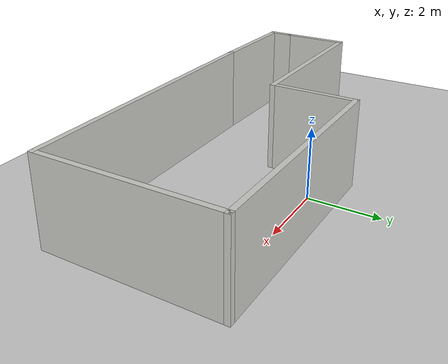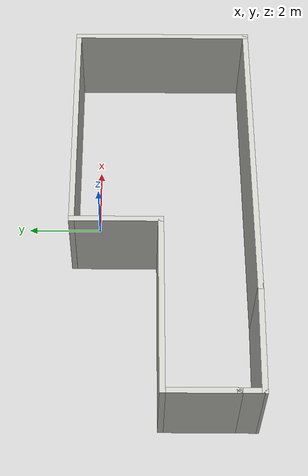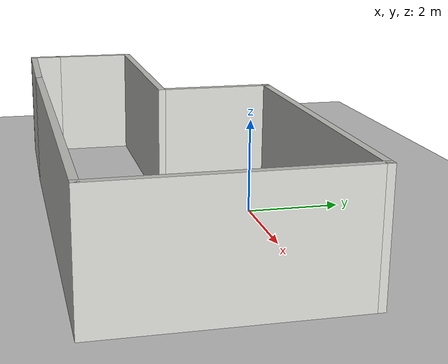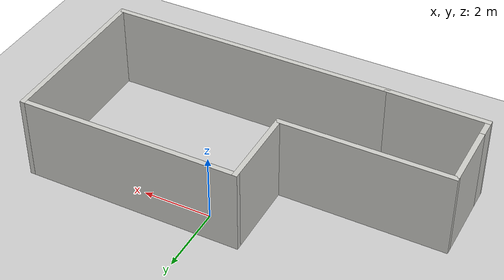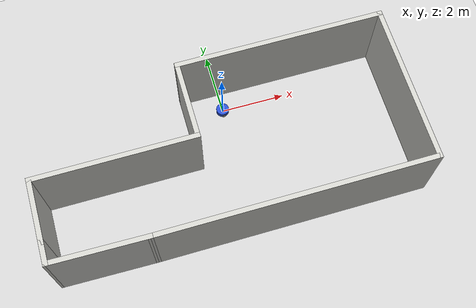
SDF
<sdf version="1.6">
 <world name="default">
  <plugin filename="gz-sim-physics-system" name="gz::sim::systems::Physics"/>
  <plugin filename="gz-sim-user-commands-system" name="gz::sim::systems::UserCommands"/>
  <plugin filename="gz-sim-scene-broadcaster-system" name="gz::sim::systems::SceneBroadcaster"/>
  <light name="sun" type="directional">
   <pose>0 0 10 0 -0 0</pose>
   <diffuse>0.8 0.8 0.8 1</diffuse>
   <specular>0.1 0.1 0.1 1</specular>
   <attenuation>
    <range>1000</range>
    <constant>0.9</constant>
    <linear>0.01</linear>
    <quadratic>0.001</quadratic>
   </attenuation>
   <direction>-0.5 0.5 -1</direction>
  </light>
  <model name="ground_plane">
   <static>1</static>
   <link name="link">
    <collision name="collision">
     <geometry><plane><normal>0 0 1</normal><size>100 100</size></plane></geometry>
     <surface><friction><ode><mu>100</mu><mu2>50</mu2></ode></friction></surface>
    </collision>
    <visual name="visual">
     <cast_shadows>0</cast_shadows>
     <geometry><plane><normal>0 0 1</normal><size>100 100</size></plane></geometry>
     <material>
      <script><uri>file://media/materials/scripts/gazebo.material</uri><name>Gazebo/Grey</name></script>
     </material>
    </visual>
   </link>
  </model>
  <gravity>0 0 -9.8</gravity>
  <magnetic_field>6e-06 2.3e-05 -4.2e-05</magnetic_field>
  <atmosphere type="adiabatic"/>
  <physics name="default_physics" default="0" type="dart">
   <max_step_size>0.001</max_step_size>
   <real_time_factor>1</real_time_factor>
   <real_time_update_rate>1000</real_time_update_rate>
  </physics>
  <scene><ambient>0.4 0.4 0.4 1</ambient><background>0.7 0.7 0.7 1</background><shadows>1</shadows></scene>
  <spherical_coordinates>
   <surface_model>EARTH_WGS84</surface_model>
   <latitude_deg>0</latitude_deg>
   <longitude_deg>0</longitude_deg>
   <elevation>0</elevation>
   <heading_deg>0</heading_deg>
  </spherical_coordinates>
  <model name="mrobot">
   <link name="base_footprint">
    <inertial>
     <pose>0 0 0.11 0 -0 0</pose>
     <mass>20</mass>
     <inertia><ixx>0.242667</ixx><ixy>0</ixy><ixz>0</ixz><iyy>0.242667</iyy><iyz>0</iyz><izz>0.4</izz></inertia>
    </inertial>
    <collision name="base_footprint_fixed_joint_lump__base_link_collision">
     <pose>0 0 0.11 0 -0 0</pose>
     <geometry><cylinder><length>0.16</length><radius>0.2</radius></cylinder></geometry>
    </collision>
    <visual name="base_footprint_visual">
     <geometry><box><size>0.001 0.001 0.001</size></box></geometry>
     <material><script><uri>__default__</uri><name>__default__</name></script></material>
    </visual>
    <visual name="base_footprint_fixed_joint_lump__base_link_visual_1">
     <pose>0 0 0.11 0 -0 0</pose>
     <geometry><cylinder><length>0.16</length><radius>0.2</radius></cylinder></geometry>
     <material>
      <script><name>Gazebo/Blue</name><uri>file://media/materials/scripts/gazebo.material</uri></script>
     </material>
    </visual>
   </link>
   <link name="back_caster_link">
    <pose>0.18 0 0.015 0 -0 0</pose>
    <inertial>
     <mass>0.5</mass>
     <inertia><ixx>4.5e-05</ixx><ixy>0</ixy><ixz>0</ixz><iyy>4.5e-05</iyy><iyz>0</iyz><izz>4.5e-05</izz></inertia>
    </inertial>
    <collision name="back_caster_link_collision">
     <geometry><sphere><radius>0.015</radius></sphere></geometry>
    </collision>
    <visual name="back_caster_link_visual">
     <geometry><sphere><radius>0.015</radius></sphere></geometry>
     <material>
      <script><name>Gazebo/Black</name><uri>file://media/materials/scripts/gazebo.material</uri></script>
     </material>
    </visual>
   </link>
   <joint name="back_caster_joint" type="revolute">
    <child>back_caster_link</child>
    <parent>base_footprint</parent>
    <axis>
     <xyz>0 1 0</xyz>
     <limit><lower>-1e+16</lower><upper>1e+16</upper></limit>
     <dynamics><spring_reference>0</spring_reference><spring_stiffness>0</spring_stiffness></dynamics>
     <use_parent_model_frame>1</use_parent_model_frame>
    </axis>
   </joint>
   <link name="front_caster_link">
    <pose>-0.18 0 0.015 0 -0 0</pose>
    <inertial>
     <mass>0.5</mass>
     <inertia><ixx>4.5e-05</ixx><ixy>0</ixy><ixz>0</ixz><iyy>4.5e-05</iyy><iyz>0</iyz><izz>4.5e-05</izz></inertia>
    </inertial>
    <collision name="front_caster_link_collision">
     <geometry><sphere><radius>0.015</radius></sphere></geometry>
    </collision>
    <visual name="front_caster_link_visual">
     <geometry><sphere><radius>0.015</radius></sphere></geometry>
     <material>
      <script><name>Gazebo/Black</name><uri>file://media/materials/scripts/gazebo.material</uri></script>
     </material>
    </visual>
   </link>
   <joint name="front_caster_joint" type="revolute">
    <child>front_caster_link</child>
    <parent>base_footprint</parent>
    <axis>
     <xyz>0 1 0</xyz>
     <limit><lower>-1e+16</lower><upper>1e+16</upper></limit>
     <dynamics><spring_reference>0</spring_reference><spring_stiffness>0</spring_stiffness></dynamics>
     <use_parent_model_frame>1</use_parent_model_frame>
    </axis>
   </joint>
   <link name="left_wheel_link">
    <pose>0 -0.19 0.06 0 -0 0</pose>
    <inertial>
     <mass>2</mass>
     <inertia>
      <ixx>0.00190417</ixx>
      <ixy>0</ixy>
      <ixz>0</ixz>
      <iyy>0.00190417</iyy>
      <iyz>0</iyz>
      <izz>0.0036</izz>
     </inertia>
    </inertial>
    <collision name="left_wheel_link_collision">
     <pose>0 0 0 1.5708 -0 0</pose>
     <geometry><cylinder><length>0.025</length><radius>0.06</radius></cylinder></geometry>
    </collision>
    <visual name="left_wheel_link_visual">
     <pose>0 0 0 1.5708 -0 0</pose>
     <geometry><cylinder><length>0.025</length><radius>0.06</radius></cylinder></geometry>
     <material>
      <script><name>Gazebo/Gray</name><uri>file://media/materials/scripts/gazebo.material</uri></script>
     </material>
    </visual>
   </link>
   <joint name="left_wheel_joint" type="revolute">
    <child>left_wheel_link</child>
    <parent>base_footprint</parent>
    <axis>
     <xyz>0 1 0</xyz>
     <limit><lower>-1e+16</lower><upper>1e+16</upper></limit>
     <dynamics><spring_reference>0</spring_reference><spring_stiffness>0</spring_stiffness></dynamics>
     <use_parent_model_frame>1</use_parent_model_frame>
    </axis>
   </joint>
   <link name="right_wheel_link">
    <pose>0 0.19 0.06 0 -0 0</pose>
    <inertial>
     <mass>2</mass>
     <inertia>
      <ixx>0.00190417</ixx>
      <ixy>0</ixy>
      <ixz>0</ixz>
      <iyy>0.00190417</iyy>
      <iyz>0</iyz>
      <izz>0.0036</izz>
     </inertia>
    </inertial>
    <collision name="right_wheel_link_collision">
     <pose>0 0 0 1.5708 -0 0</pose>
     <geometry><cylinder><length>0.025</length><radius>0.06</radius></cylinder></geometry>
    </collision>
    <visual name="right_wheel_link_visual">
     <pose>0 0 0 1.5708 -0 0</pose>
     <geometry><cylinder><length>0.025</length><radius>0.06</radius></cylinder></geometry>
     <material>
      <script><name>Gazebo/Gray</name><uri>file://media/materials/scripts/gazebo.material</uri></script>
     </material>
    </visual>
   </link>
   <joint name="right_wheel_joint" type="revolute">
    <child>right_wheel_link</child>
    <parent>base_footprint</parent>
    <axis>
     <xyz>0 1 0</xyz>
     <limit><lower>-1e+16</lower><upper>1e+16</upper></limit>
     <dynamics><spring_reference>0</spring_reference><spring_stiffness>0</spring_stiffness></dynamics>
     <use_parent_model_frame>1</use_parent_model_frame>
    </axis>
   </joint>
   <static>0</static>
   <plugin name="gz::sim::systems::DiffDrive" filename="gz-sim-diff-drive-system">
    <rosDebugLevel>Debug</rosDebugLevel>
    <publishWheelTF>true</publishWheelTF>
    <robotNamespace>/</robotNamespace>
    <publishTf>1</publishTf>
    <publishWheelJointState>true</publishWheelJointState>
    <alwaysOn>true</alwaysOn>
    <updateRate>100.0</updateRate>
    <legacyMode>true</legacyMode>
    <leftJoint>left_wheel_joint</leftJoint>
    <rightJoint>right_wheel_joint</rightJoint>
    <wheelSeparation>0.38</wheelSeparation>
    <wheelDiameter>0.12</wheelDiameter>
    <broadcastTF>1</broadcastTF>
    <wheelTorque>30</wheelTorque>
    <wheelAcceleration>1.8</wheelAcceleration>
    <commandTopic>cmd_vel</commandTopic>
    <odometryFrame>odom</odometryFrame>
    <odometryTopic>odom</odometryTopic>
    <robotBaseFrame>base_footprint</robotBaseFrame>
   </plugin>
   <pose>-0.000122 0.000118 0 0 0 -1.4e-05</pose>
  </model>
  <model name="room">
   <pose>-0.420652 -1.74565 0 0 -0 0</pose>
   <link name="Wall_0">
    <collision name="Wall_0_Collision">
     <geometry><box><size>8.5 0.15 2.5</size></box></geometry>
     <pose>0 0 1.25 0 -0 0</pose>
    </collision>
    <visual name="Wall_0_Visual">
     <pose>0 0 1.25 0 -0 0</pose>
     <geometry><box><size>8.5 0.15 2.5</size></box></geometry>
     <material>
      <script><uri>file://media/materials/scripts/gazebo.material</uri><name>Gazebo/CeilingTiled</name></script>
      <ambient>1 1 1 1</ambient>
     </material>
    </visual>
    <pose>1.42565 -2.42435 0 0 -0 0</pose>
   </link>
   <link name="Wall_3">
    <collision name="Wall_3_Collision">
     <geometry><box><size>5 0.15 2.5</size></box></geometry>
     <pose>0 0 1.25 0 -0 0</pose>
    </collision>
    <visual name="Wall_3_Visual">
     <pose>0 0 1.25 0 -0 0</pose>
     <geometry><box><size>5 0.15 2.5</size></box></geometry>
     <material>
      <script><uri>file://media/materials/scripts/gazebo.material</uri><name>Gazebo/CeilingTiled</name></script>
      <ambient>1 1 1 1</ambient>
     </material>
    </visual>
    <pose>5.60065 0.000652 0 0 -0 1.5708</pose>
   </link>
   <link name="Wall_4">
    <collision name="Wall_4_Collision">
     <geometry><box><size>6.5 0.15 2.5</size></box></geometry>
     <pose>0 0 1.25 0 -0 0</pose>
    </collision>
    <visual name="Wall_4_Visual">
     <pose>0 0 1.25 0 -0 0</pose>
     <geometry><box><size>6.5 0.15 2.5</size></box></geometry>
     <material>
      <script><uri>file://media/materials/scripts/gazebo.material</uri><name>Gazebo/CeilingTiled</name></script>
      <ambient>1 1 1 1</ambient>
     </material>
    </visual>
    <pose>2.42565 2.42565 0 0 -0 3.14159</pose>
   </link>
   <link name="Wall_5">
    <collision name="Wall_5_Collision">
     <geometry><box><size>2.5 0.15 2.5</size></box></geometry>
     <pose>0 0 1.25 0 -0 0</pose>
    </collision>
    <visual name="Wall_5_Visual">
     <pose>0 0 1.25 0 -0 0</pose>
     <geometry><box><size>2.5 0.15 2.5</size></box></geometry>
     <material>
      <script><uri>file://media/materials/scripts/gazebo.material</uri><name>Gazebo/CeilingTiled</name></script>
      <ambient>1 1 1 1</ambient>
     </material>
    </visual>
    <pose>-0.749348 1.25065 0 0 0 -1.5708</pose>
   </link>
   <link name="Wall_6">
    <collision name="Wall_6_Collision">
     <geometry><box><size>5 0.15 2.5</size></box></geometry>
     <pose>0 0 1.25 0 -0 0</pose>
    </collision>
    <visual name="Wall_6_Visual">
     <pose>0 0 1.25 0 -0 0</pose>
     <geometry><box><size>5 0.15 2.5</size></box></geometry>
     <material>
      <script><uri>file://media/materials/scripts/gazebo.material</uri><name>Gazebo/CeilingTiled</name></script>
      <ambient>1 1 1 1</ambient>
     </material>
    </visual>
    <pose>-3.17435 0.075652 0 0 -0 3.14159</pose>
   </link>
   <link name="Wall_7">
    <collision name="Wall_7_Collision">
     <geometry><box><size>2 0.15 2.5</size></box></geometry>
     <pose>0 0 1.25 0 -0 0</pose>
    </collision>
    <visual name="Wall_7_Visual">
     <pose>0 0 1.25 0 -0 0</pose>
     <geometry><box><size>2 0.15 2.5</size></box></geometry>
     <material>
      <script><uri>file://media/materials/scripts/gazebo.material</uri><name>Gazebo/CeilingTiled</name></script>
      <ambient>1 1 1 1</ambient>
     </material>
    </visual>
    <pose>-5.59935 -0.849348 0 0 0 -1.5708</pose>
   </link>
   <link name="Wall_8">
    <collision name="Wall_8_Collision">
     <geometry><box><size>0.75 0.15 2.5</size></box></geometry>
     <pose>0 0 1.25 0 -0 0</pose>
    </collision>
    <visual name="Wall_8_Visual">
     <pose>0 0 1.25 0 -0 0</pose>
     <geometry><box><size>0.75 0.15 2.5</size></box></geometry>
     <material>
      <script><uri>file://media/materials/scripts/gazebo.material</uri><name>Gazebo/CeilingTiled</name></script>
      <ambient>1 1 1 1</ambient>
     </material>
    </visual>
    <pose>-5.59935 -2.07435 0 0 0 -1.5708</pose>
   </link>
   <link name="Wall_9">
    <collision name="Wall_9_Collision">
     <geometry><box><size>3.00044 0.15 2.5</size></box></geometry>
     <pose>0 0 1.25 0 -0 0</pose>
    </collision>
    <visual name="Wall_9_Visual">
     <pose>0 0 1.25 0 -0 0</pose>
     <geometry><box><size>3.00044 0.15 2.5</size></box></geometry>
     <material>
      <script><uri>file://media/materials/scripts/gazebo.material</uri><name>Gazebo/CeilingTiled</name></script>
      <ambient>1 1 1 1</ambient>
     </material>
    </visual>
    <pose>-4.17435 -2.39935 0 0 0 -0.017542</pose>
   </link>
   <static>1</static>
  </model>
 </world>
</sdf>
